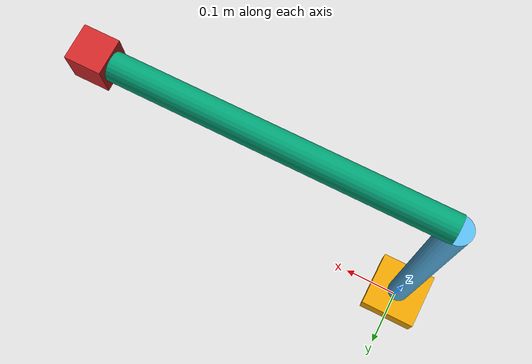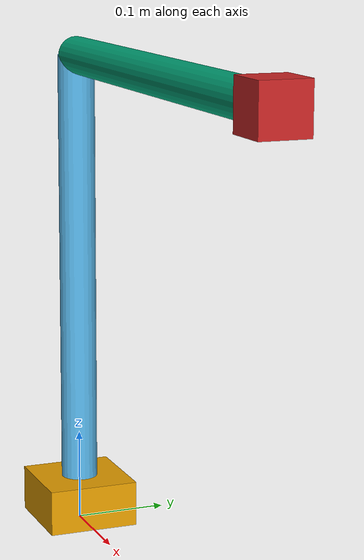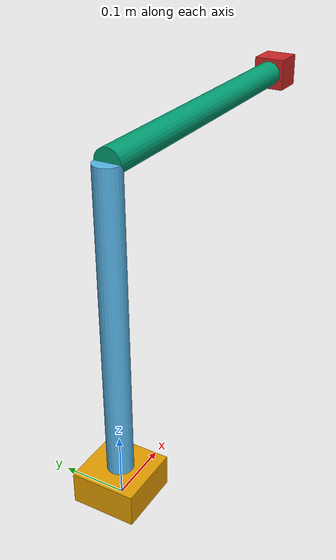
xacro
<robot name="camera_mount" xmlns:xacro="http://www.ros.org/wiki/xacro">

  <!-- Base of the camera mount -->
  <link name="camera_base_link">
    <visual>
      <origin xyz="0 0 0.025" rpy="0 0 0"/>
      <geometry>
        <box size="0.1 0.1 0.05"/>
      </geometry>
    </visual>
    <inertial>
      <origin xyz="0 0 0.025" rpy="0 0 0"/>
      <mass value="100.0"/>
      <inertia ixx="0.00095" ixy="0" ixz="0" iyy="0.00095" iyz="0" izz="0.00167"/>
    </inertial>
    <collision>
      <origin xyz="0 0 0.025" rpy="0 0 0"/>
      <geometry>
        <box size="0.1 0.1 0.05"/>
      </geometry>
    </collision>
    <gazebo>
      <self_collide>0</self_collide>
      <kinematic> true </kinematic>
      <static>true</static>
      <collide_without_contact>false</collide_without_contact>
    </gazebo>
  </link>

  <!-- First fixed joint connecting the base to the pole -->
  <joint name="joint1" type="fixed">
    <parent link="camera_base_link"/>
    <child link="pole_link"/>
    <origin xyz="0 0 0.025" rpy="0 0 0"/>
  </joint>

<!-- Pole of the camera mount -->
  <link name="pole_link">
    <visual>
      <origin xyz="0 0 0.25" rpy="0 0 0"/>
      <geometry>
        <cylinder length="0.5" radius="0.02"/>
      </geometry>
    </visual>
    <inertial>
      <origin xyz="0 0 0.25" rpy="0 0 0"/>
      <mass value="0.5"/>
      <inertia ixx="0.000625" ixy="0" ixz="0" iyy="0.000625" iyz="0" izz="0.0001"/>
    </inertial>
    <collision>
      <origin xyz="0 0 0.25" rpy="0 0 0"/>
      <geometry>
        <cylinder length="0.5" radius="0.02"/>
      </geometry>
    </collision>
    <gazebo>
      <self_collide>0</self_collide>
      <kinematic> true </kinematic>
      <collide_without_contact>false</collide_without_contact>
    </gazebo>
  </link>

  <!-- Second joint allowing rotation of the holder link -->
  <joint name="holder_joint" type="continuous">
    <parent link="pole_link"/>
    <child link="camera_holder_link"/>
    <origin xyz="0 0 0.5" rpy="0 0 0"/>
    <axis xyz="0 0 1"/>
  </joint>
  <!-- Holder for the camera, allowing rotation -->
  <link name="camera_holder_link">
    <visual>
      <origin xyz="0.25 0 0" rpy="0 1.57 0"/>
      <geometry>
        <cylinder length="0.5" radius="0.02"/>
      </geometry>
    </visual>
    <inertial>
      <origin xyz="0.25 0 0" rpy="0 1.57 0"/>
      <mass value="0.5"/>
      <inertia ixx="0.000625" ixy="0" ixz="0" iyy="0.000625" iyz="0" izz="0.0001"/>
    </inertial>
    <collision>
      <origin xyz="0.25 0 0" rpy="0 1.57 0"/>
      <geometry>
        <cylinder length="0.5" radius="0.02"/>
      </geometry>
    </collision>
    <gazebo>
      <self_collide>0</self_collide>
      <kinematic> true </kinematic>
      <collide_without_contact>false</collide_without_contact>
    </gazebo>
  </link>

  <!-- Joint connecting the camera to the holder -->
  <joint name="camera_joint" type="continuous">
    <parent link="camera_holder_link"/>
    <child link="camera_link"/>
    <origin xyz="0.5 0 0" rpy="0 0 0"/>
    <axis xyz="1 0 0"/>
  </joint>

  <!-- Camera link -->
  <link name="camera_link">
    <visual>
      <geometry>
        <box size="0.05 0.05 0.05"/>
      </geometry>
      <material name="red"/>
    </visual>
    <inertial>
      <mass value="0.1"/>
      <inertia ixx="0.00005" ixy="0" ixz="0" iyy="0.00005" iyz="0" izz="0.00005"/>
    </inertial>
    <collision>
      <geometry>
        <box size="0.05 0.05 0.05"/>
      </geometry>
    </collision>
    <gazebo>
      <self_collide>0</self_collide>
      <kinematic> true </kinematic>
      <collide_without_contact>false</collide_without_contact>
    </gazebo>
  </link>

  <!-- Include the Gazebo plugin for camera -->
  <gazebo reference="camera_link">
    <sensor type="camera" name="camera_sensor">
      <camera>
        <horizontal_fov>1.3962634</horizontal_fov>
        <image>
          <width>800</width>
          <height>800</height>
          <format>R8G8B8</format>
        </image>
        <clip>
          <near>0.02</near>
          <far>300</far>
        </clip>
      </camera>
      <plugin name="camera_controller" filename="libgazebo_ros_camera.so">
        <alwaysOn>true</alwaysOn>
        <updateRate>30.0</updateRate>
        <cameraName>camera</cameraName>
        <imageTopicName>image_raw</imageTopicName>
        <cameraInfoTopicName>camera_info</cameraInfoTopicName>
      </plugin>
    </sensor>
  </gazebo>

</robot>
